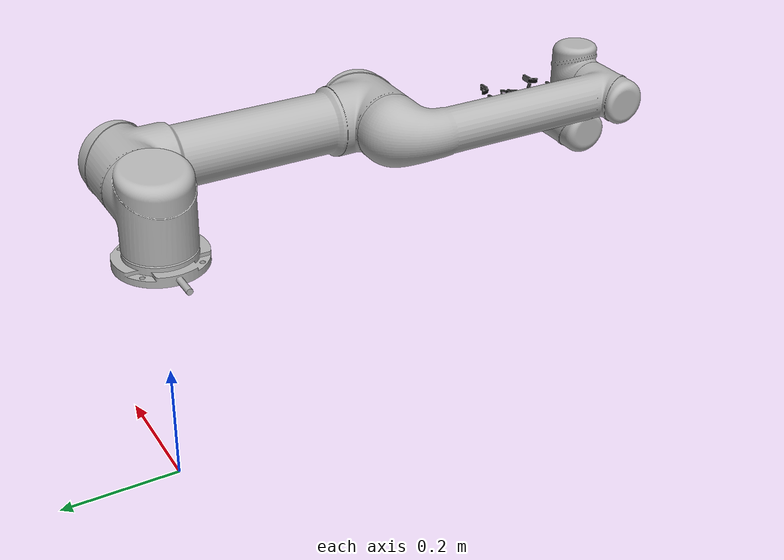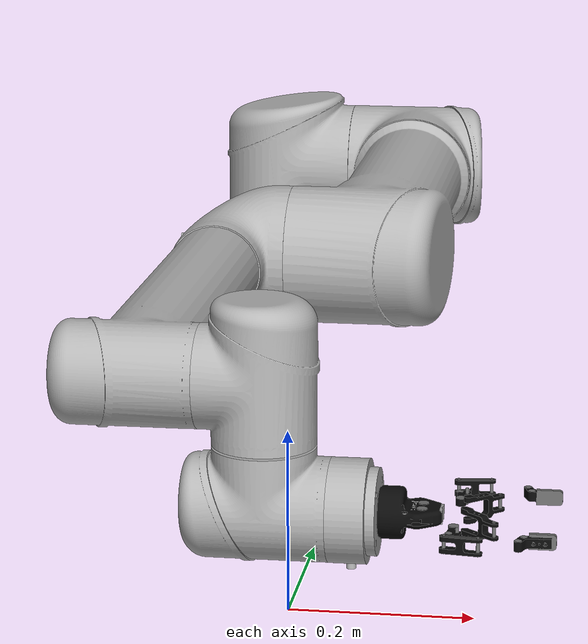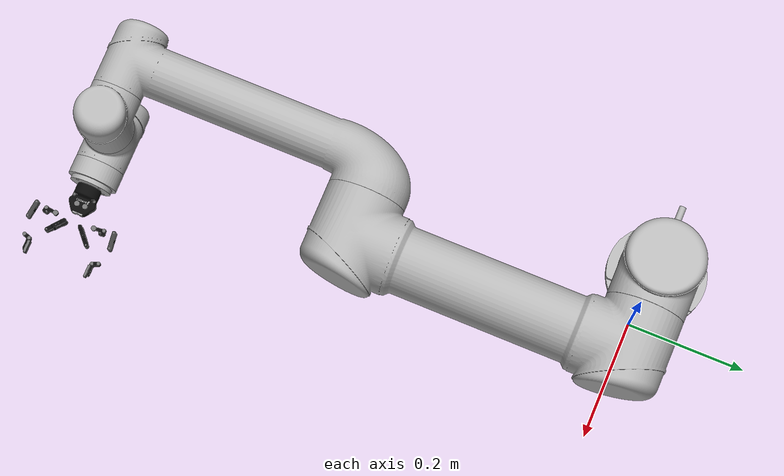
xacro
<?xml version="1.0"?>
<robot xmlns:xacro="http://www.ros.org/wiki/xacro" name="ur_robotiq">

  <xacro:include filename="$(find ur_description)/urdf/common.gazebo.xacro" />
  <xacro:include filename="$(find ur_robotiq_description)/urdf/ur5-vel.urdf.xacro" />
  <xacro:include filename="$(find robotiq_85_description)/urdf/robotiq_85_gripper.urdf.xacro" />

  <xacro:ur5_robot prefix="" joint_limited="false"/>

  <link name="world" />

  <joint name="world_joint" type="fixed">
    <parent link="world" />
    <child link = "base_link" />
    <origin xyz="0.0 0.0 0.4" rpy="0.0 0.0 ${-pi/2}" />
  </joint>

  <xacro:robotiq_85_gripper prefix="" parent="tool0" >
    <origin xyz="0 0 0" rpy="0 ${-pi/2} ${pi/2}"/>
  </xacro:robotiq_85_gripper>

</robot>

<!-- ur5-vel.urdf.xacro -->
<robot xmlns:xacro="http://wiki.ros.org/xacro">

  <xacro:include filename="$(find ur_description)/urdf/ur.transmission.xacro" />
  <xacro:include filename="$(find ur_description)/urdf/ur.gazebo.xacro" />

  <xacro:macro name="cylinder_inertial" params="radius length mass *origin">
    <inertial>
      <mass value="${mass}" />
      <xacro:insert_block name="origin" />
      <inertia ixx="${0.0833333 * mass * (3 * radius * radius + length * length)}" ixy="0.0" ixz="0.0"
        iyy="${0.0833333 * mass * (3 * radius * radius + length * length)}" iyz="0.0"
        izz="${0.5 * mass * radius * radius}" />
    </inertial>
  </xacro:macro>

  <xacro:macro name="ur5_robot" params="prefix joint_limited
    shoulder_pan_lower_limit:=${-pi}    shoulder_pan_upper_limit:=${pi}
    shoulder_lift_lower_limit:=${-pi}    shoulder_lift_upper_limit:=${pi}
    elbow_joint_lower_limit:=${-pi}    elbow_joint_upper_limit:=${pi}
    wrist_1_lower_limit:=${-pi}    wrist_1_upper_limit:=${pi}
    wrist_2_lower_limit:=${-pi}    wrist_2_upper_limit:=${pi}
    wrist_3_lower_limit:=${-pi}    wrist_3_upper_limit:=${pi}
    transmission_hw_interface:=hardware_interface/VelocityJointInterface
    safety_limits:=false safety_pos_margin:=0.15
    safety_k_position:=20">

    <!-- Inertia parameters -->
    <xacro:property name="base_mass" value="4.0" />  <!-- This mass might be incorrect -->
    <xacro:property name="shoulder_mass" value="3.7000" />
    <xacro:property name="upper_arm_mass" value="8.3930" />
    <xacro:property name="forearm_mass" value="2.2750" />
    <xacro:property name="wrist_1_mass" value="1.2190" />
    <xacro:property name="wrist_2_mass" value="1.2190" />
    <xacro:property name="wrist_3_mass" value="0.1879" />

    <xacro:property name="shoulder_cog" value="0.0 0.00193 -0.02561" />
    <xacro:property name="upper_arm_cog" value="0.0 -0.024201 0.2125" />
    <xacro:property name="forearm_cog" value="0.0 0.0265 0.11993" />
    <xacro:property name="wrist_1_cog" value="0.0 0.110949 0.01634" />
    <xacro:property name="wrist_2_cog" value="0.0 0.0018 0.11099" />
    <xacro:property name="wrist_3_cog" value="0.0 0.001159 0.0" />

    <!-- Kinematic model -->
    <!-- Properties from urcontrol.conf -->
    <xacro:property name="d1" value="0.089159" />
    <xacro:property name="a2" value="-0.42500" />
    <xacro:property name="a3" value="-0.39225" />
    <xacro:property name="d4" value="0.10915" />
    <xacro:property name="d5" value="0.09465" />
    <xacro:property name="d6" value="0.0823" />

    <!-- Arbitrary offsets for shoulder/elbow joints -->
    <xacro:property name="shoulder_offset" value="0.13585" />  <!-- measured from model -->
    <xacro:property name="elbow_offset" value="-0.1197" /> <!-- measured from model -->

    <!-- link lengths used in model -->
    <xacro:property name="shoulder_height" value="${d1}" />
    <xacro:property name="upper_arm_length" value="${-a2}" />
    <xacro:property name="forearm_length" value="${-a3}" />
    <xacro:property name="wrist_1_length" value="${d4 - elbow_offset - shoulder_offset}" />
    <xacro:property name="wrist_2_length" value="${d5}" />
    <xacro:property name="wrist_3_length" value="${d6}" />
    <!--property name="shoulder_height" value="0.089159" /-->
    <!--property name="shoulder_offset" value="0.13585" /-->  <!-- shoulder_offset - elbow_offset + wrist_1_length = 0.10915 -->
    <!--property name="upper_arm_length" value="0.42500" /-->
    <!--property name="elbow_offset" value="0.1197" /-->       <!-- CAD measured -->
    <!--property name="forearm_length" value="0.39225" /-->
    <!--property name="wrist_1_length" value="0.093" /-->     <!-- CAD measured -->
    <!--property name="wrist_2_length" value="0.09465" /-->   <!-- In CAD this distance is 0.930, but in the spec it is 0.09465 -->
    <!--property name="wrist_3_length" value="0.0823" /-->

    <xacro:property name="shoulder_radius" value="0.060" />   <!-- manually measured -->
    <xacro:property name="upper_arm_radius" value="0.054" />  <!-- manually measured -->
    <xacro:property name="elbow_radius" value="0.060" />      <!-- manually measured -->
    <xacro:property name="forearm_radius" value="0.040" />    <!-- manually measured -->
    <xacro:property name="wrist_radius" value="0.045" />      <!-- manually measured -->

    <link name="${prefix}base_link" >
      <visual>
        <geometry>
          <mesh filename="package://ur_description/meshes/ur5/visual/base.dae" />
        </geometry>
        <material name="LightGrey">
          <color rgba="0.7 0.7 0.7 1.0"/>
        </material>
      </visual>
      <collision>
        <geometry>
          <mesh filename="package://ur_description/meshes/ur5/collision/base.stl" />
        </geometry>
      </collision>
      <xacro:cylinder_inertial radius="0.06" length="0.05" mass="${base_mass}">
        <origin xyz="0.0 0.0 0.0" rpy="0 0 0" />
      </xacro:cylinder_inertial>
    </link>

    <joint name="${prefix}shoulder_pan_joint" type="revolute">
      <parent link="${prefix}base_link" />
      <child link = "${prefix}shoulder_link" />
      <origin xyz="0.0 0.0 ${shoulder_height}" rpy="0.0 0.0 0.0" />
      <axis xyz="0 0 1" />
      <xacro:unless value="${joint_limited}">
        <limit lower="${-2.0 * pi}" upper="${2.0 * pi}" effort="150.0" velocity="3.15"/>
        <xacro:if value="${safety_limits}">
          <safety_controller soft_lower_limit="${-2.0 * pi + safety_pos_margin}" soft_upper_limit="${2.0 * pi - safety_pos_margin}" k_position="${safety_k_position}" k_velocity="0.0"/>
        </xacro:if>
      </xacro:unless>
      <xacro:if value="${joint_limited}">
        <limit lower="${shoulder_pan_lower_limit}" upper="${shoulder_pan_upper_limit}" effort="150.0" velocity="3.15"/>
        <xacro:if value="${safety_limits}">
          <safety_controller soft_lower_limit="${shoulder_pan_lower_limit + safety_pos_margin}" soft_upper_limit="${shoulder_pan_upper_limit - safety_pos_margin}" k_position="${safety_k_position}" k_velocity="0.0"/>
        </xacro:if>
      </xacro:if>
      <dynamics damping="0.0" friction="0.0"/>
    </joint>

    <link name="${prefix}shoulder_link">
      <visual>
        <geometry>
          <mesh filename="package://ur_description/meshes/ur5/visual/shoulder.dae" />
        </geometry>
        <material name="LightGrey">
          <color rgba="0.7 0.7 0.7 1.0"/>
        </material>
      </visual>
      <collision>
        <geometry>
          <mesh filename="package://ur_description/meshes/ur5/collision/shoulder.stl" />
        </geometry>
      </collision>
      <xacro:cylinder_inertial radius="0.06" length="0.15" mass="${shoulder_mass}">
        <origin xyz="0.0 0.0 0.0" rpy="0 0 0" />
      </xacro:cylinder_inertial>
    </link>

    <joint name="${prefix}shoulder_lift_joint" type="revolute">
      <parent link="${prefix}shoulder_link" />
      <child link = "${prefix}upper_arm_link" />
      <origin xyz="0.0 ${shoulder_offset} 0.0" rpy="0.0 ${pi / 2.0} 0.0" />
      <axis xyz="0 1 0" />
      <xacro:unless value="${joint_limited}">
        <limit lower="${-2.0 * pi}" upper="${2.0 * pi}" effort="150.0" velocity="3.15"/>
        <xacro:if value="${safety_limits}">
          <safety_controller soft_lower_limit="${-2.0 * pi + safety_pos_margin}" soft_upper_limit="${2.0 * pi - safety_pos_margin}" k_position="${safety_k_position}" k_velocity="0.0"/>
        </xacro:if>
      </xacro:unless>
      <xacro:if value="${joint_limited}">
        <limit lower="${shoulder_lift_lower_limit}" upper="${shoulder_lift_upper_limit}" effort="150.0" velocity="3.15"/>
        <xacro:if value="${safety_limits}">
          <safety_controller soft_lower_limit="${shoulder_lift_lower_limit + safety_pos_margin}" soft_upper_limit="${shoulder_lift_upper_limit - safety_pos_margin}" k_position="${safety_k_position}" k_velocity="0.0"/>
        </xacro:if>
      </xacro:if>
      <dynamics damping="0.0" friction="0.0"/>
    </joint>

    <link name="${prefix}upper_arm_link">
      <visual>
        <geometry>
          <mesh filename="package://ur_description/meshes/ur5/visual/upperarm.dae" />
        </geometry>
        <material name="LightGrey">
          <color rgba="0.7 0.7 0.7 1.0"/>
        </material>
      </visual>
      <collision>
        <geometry>
          <mesh filename="package://ur_description/meshes/ur5/collision/upperarm.stl" />
        </geometry>
      </collision>
      <xacro:cylinder_inertial radius="0.06" length="0.56" mass="${upper_arm_mass}">
        <origin xyz="0.0 0.0 0.28" rpy="0 0 0" />
      </xacro:cylinder_inertial>
    </link>

    <joint name="${prefix}elbow_joint" type="revolute">
      <parent link="${prefix}upper_arm_link" />
      <child link = "${prefix}forearm_link" />
      <origin xyz="0.0 ${elbow_offset} ${upper_arm_length}" rpy="0.0 0.0 0.0" />
      <axis xyz="0 1 0" />
      <xacro:unless value="${joint_limited}">
        <limit lower="${-pi}" upper="${pi}" effort="150.0" velocity="3.15"/>
        <xacro:if value="${safety_limits}">
          <safety_controller soft_lower_limit="${-2.0 * pi + safety_pos_margin}" soft_upper_limit="${2.0 * pi - safety_pos_margin}" k_position="${safety_k_position}" k_velocity="0.0"/>
        </xacro:if>
      </xacro:unless>
      <xacro:if value="${joint_limited}">
        <limit lower="${elbow_joint_lower_limit}" upper="${elbow_joint_upper_limit}" effort="150.0" velocity="3.15"/>
        <xacro:if value="${safety_limits}">
          <safety_controller soft_lower_limit="${elbow_joint_lower_limit + safety_pos_margin}" soft_upper_limit="${elbow_joint_upper_limit - safety_pos_margin}" k_position="${safety_k_position}" k_velocity="0.0"/>
        </xacro:if>
      </xacro:if>
      <dynamics damping="0.0" friction="0.0"/>
    </joint>

    <link name="${prefix}forearm_link">
      <visual>
        <geometry>
          <mesh filename="package://ur_description/meshes/ur5/visual/forearm.dae" />
        </geometry>
        <material name="LightGrey">
          <color rgba="0.7 0.7 0.7 1.0"/>
        </material>
      </visual>
      <collision>
        <geometry>
          <mesh filename="package://ur_description/meshes/ur5/collision/forearm.stl" />
        </geometry>
      </collision>
      <xacro:cylinder_inertial radius="0.06" length="${-a3}" mass="${forearm_mass}">
        <origin xyz="0.0 0.0 ${-a3/2}" rpy="0 0 0" />
      </xacro:cylinder_inertial>
    </link>

    <joint name="${prefix}wrist_1_joint" type="revolute">
      <parent link="${prefix}forearm_link" />
      <child link = "${prefix}wrist_1_link" />
      <origin xyz="0.0 0.0 ${forearm_length}" rpy="0.0 ${pi / 2.0} 0.0" />
      <axis xyz="0 1 0" />
      <xacro:unless value="${joint_limited}">
        <limit lower="${-2.0 * pi}" upper="${2.0 * pi}" effort="28.0" velocity="3.2"/>
        <xacro:if value="${safety_limits}">
          <safety_controller soft_lower_limit="${-2.0 * pi + safety_pos_margin}" soft_upper_limit="${2.0 * pi - safety_pos_margin}" k_position="${safety_k_position}" k_velocity="0.0"/>
        </xacro:if>
      </xacro:unless>
      <xacro:if value="${joint_limited}">
        <limit lower="${wrist_1_lower_limit}" upper="${wrist_1_upper_limit}" effort="28.0" velocity="3.2"/>
        <xacro:if value="${safety_limits}">
          <safety_controller soft_lower_limit="${wrist_1_lower_limit + safety_pos_margin}" soft_upper_limit="${wrist_1_upper_limit - safety_pos_margin}" k_position="${safety_k_position}" k_velocity="0.0"/>
        </xacro:if>
      </xacro:if>
      <dynamics damping="0.0" friction="0.0"/>
    </joint>

    <link name="${prefix}wrist_1_link">
      <visual>
        <geometry>
          <mesh filename="package://ur_description/meshes/ur5/visual/wrist1.dae" />
        </geometry>
        <material name="LightGrey">
          <color rgba="0.7 0.7 0.7 1.0"/>
        </material>
      </visual>
      <collision>
        <geometry>
          <mesh filename="package://ur_description/meshes/ur5/collision/wrist1.stl" />
        </geometry>
      </collision>
      <xacro:cylinder_inertial radius="0.06" length="0.12" mass="${wrist_1_mass}">
        <origin xyz="0.0 ${wrist_1_length} 0.0" rpy="0 0 0" />
      </xacro:cylinder_inertial>
    </link>

    <joint name="${prefix}wrist_2_joint" type="revolute">
      <parent link="${prefix}wrist_1_link" />
      <child link = "${prefix}wrist_2_link" />
      <origin xyz="0.0 ${wrist_1_length} 0.0" rpy="0.0 0.0 0.0" />
      <axis xyz="0 0 1" />
      <xacro:unless value="${joint_limited}">
        <limit lower="${-2.0 * pi}" upper="${2.0 * pi}" effort="28.0" velocity="3.2"/>
        <xacro:if value="${safety_limits}">
          <safety_controller soft_lower_limit="${-2.0 * pi + safety_pos_margin}" soft_upper_limit="${2.0 * pi - safety_pos_margin}" k_position="${safety_k_position}" k_velocity="0.0"/>
        </xacro:if>
      </xacro:unless>
      <xacro:if value="${joint_limited}">
        <limit lower="${wrist_2_lower_limit}" upper="${wrist_2_upper_limit}" effort="28.0" velocity="3.2"/>
        <xacro:if value="${safety_limits}">
          <safety_controller soft_lower_limit="${wrist_2_lower_limit + safety_pos_margin}" soft_upper_limit="${wrist_2_upper_limit - safety_pos_margin}" k_position="${safety_k_position}" k_velocity="0.0"/>
        </xacro:if>
      </xacro:if>
      <dynamics damping="0.0" friction="0.0"/>
    </joint>

    <link name="${prefix}wrist_2_link">
      <visual>
        <geometry>
          <mesh filename="package://ur_description/meshes/ur5/visual/wrist2.dae" />
        </geometry>
        <material name="LightGrey">
          <color rgba="0.7 0.7 0.7 1.0"/>
        </material>
      </visual>
      <collision>
        <geometry>
          <mesh filename="package://ur_description/meshes/ur5/collision/wrist2.stl" />
        </geometry>
      </collision>
      <xacro:cylinder_inertial radius="0.06" length="0.12" mass="${wrist_2_mass}">
        <origin xyz="0.0 0.0 ${wrist_2_length}" rpy="0 0 0" />
      </xacro:cylinder_inertial>
    </link>

    <joint name="${prefix}wrist_3_joint" type="revolute">
      <parent link="${prefix}wrist_2_link" />
      <child link = "${prefix}wrist_3_link" />
      <origin xyz="0.0 0.0 ${wrist_2_length}" rpy="0.0 0.0 0.0" />
      <axis xyz="0 1 0" />
      <xacro:unless value="${joint_limited}">
        <limit lower="${-2.0 * pi}" upper="${2.0 * pi}" effort="28.0" velocity="3.2"/>
        <xacro:if value="${safety_limits}">
          <safety_controller soft_lower_limit="${-2.0 * pi + safety_pos_margin}" soft_upper_limit="${2.0 * pi - safety_pos_margin}" k_position="${safety_k_position}" k_velocity="0.0"/>
        </xacro:if>
      </xacro:unless>
      <xacro:if value="${joint_limited}">
        <limit lower="${wrist_3_lower_limit}" upper="${wrist_3_upper_limit}" effort="28.0" velocity="3.2"/>
        <xacro:if value="${safety_limits}">
          <safety_controller soft_lower_limit="${wrist_3_lower_limit + safety_pos_margin}" soft_upper_limit="${wrist_3_upper_limit - safety_pos_margin}" k_position="${safety_k_position}" k_velocity="0.0"/>
        </xacro:if>
      </xacro:if>
      <dynamics damping="0.0" friction="0.0"/>
    </joint>

    <link name="${prefix}wrist_3_link">
      <visual>
        <geometry>
          <mesh filename="package://ur_description/meshes/ur5/visual/wrist3.dae" />
        </geometry>
        <material name="LightGrey">
          <color rgba="0.7 0.7 0.7 1.0"/>
        </material>
      </visual>
      <collision>
        <geometry>
          <mesh filename="package://ur_description/meshes/ur5/collision/wrist3.stl" />
        </geometry>
      </collision>
      <xacro:cylinder_inertial radius="0.0375" length="0.0345" mass="${wrist_3_mass}">
        <origin xyz="0.0 ${wrist_3_length - 0.0345/2} 0.0" rpy="${pi/2} 0 0" />
      </xacro:cylinder_inertial>
    </link>

    <joint name="${prefix}ee_fixed_joint" type="fixed">
      <parent link="${prefix}wrist_3_link" />
      <child link = "${prefix}ee_link" />
      <origin xyz="0.0 ${wrist_3_length} 0.0" rpy="0.0 0.0 ${pi/2.0}" />
    </joint>

    <link name="${prefix}ee_link">
      <collision>
        <geometry>
          <box size="0.01 0.01 0.01"/>
        </geometry>
        <origin rpy="0 0 0" xyz="-0.01 0 0"/>
      </collision>
    </link>

    <xacro:ur_arm_transmission prefix="${prefix}" hw_interface="${transmission_hw_interface}" />
    <xacro:ur_arm_gazebo prefix="${prefix}" />

    <!-- ROS base_link to UR 'Base' Coordinates transform -->
    <link name="${prefix}base"/>
    <joint name="${prefix}base_link-base_fixed_joint" type="fixed">
      <!-- NOTE: this rotation is only needed as long as base_link itself is
                 not corrected wrt the real robot (ie: rotated over 180
                 degrees)
      -->
      <origin xyz="0 0 0" rpy="0 0 ${-pi}"/>
      <parent link="${prefix}base_link"/>
      <child link="${prefix}base"/>
    </joint>

    <!-- Frame coincident with all-zeros TCP on UR controller -->
    <link name="${prefix}tool0"/>
    <joint name="${prefix}wrist_3_link-tool0_fixed_joint" type="fixed">
      <origin xyz="0 ${wrist_3_length} 0" rpy="${pi/-2.0} 0 0"/>
      <parent link="${prefix}wrist_3_link"/>
      <child link="${prefix}tool0"/>
    </joint>

  </xacro:macro>
</robot>

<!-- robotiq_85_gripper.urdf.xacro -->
<robot name="robotiq_85_gripper" xmlns:xacro="http://www.ros.org/wiki/xacro">

  <xacro:include filename="$(find robotiq_85_description)/urdf/robotiq_85_gripper.transmission.xacro" />

  <xacro:macro name="robotiq_85_gripper" params="prefix parent *origin">

    <joint name="${prefix}robotiq_85_base_joint" type="fixed">
      <parent link="${parent}"/>
      <child link="${prefix}robotiq_85_base_link"/>
      <xacro:insert_block name="origin"/>
    </joint>

    <link name="${prefix}robotiq_85_base_link">
      <visual>
        <geometry>
          <mesh filename="package://robotiq_85_description/meshes/visual/robotiq_85_base_link.dae"/>
        </geometry>
      </visual>
      <collision>
        <geometry>
          <mesh filename="package://robotiq_85_description/meshes/collision/robotiq_85_base_link.stl"/>
        </geometry>
      </collision>
      <inertial>
        <mass value="0.636951" />
        <origin xyz="0.0 0.0 0.0" />
        <inertia ixx = "0.000380" ixy = "0.000000" ixz = "0.000000"
             iyx = "0.000000" iyy = "0.001110" iyz = "0.000000"
             izx = "0.000000" izy = "0.000000" izz = "0.001171" />
      </inertial>
    </link>

    <joint name="${prefix}robotiq_85_left_knuckle_joint" type="revolute">
      <parent link="${prefix}robotiq_85_base_link"/>
      <child link="${prefix}robotiq_85_left_knuckle_link"/>
      <axis xyz="0 0 1"/>
      <origin rpy="${pi} 0.0 0.0" xyz="0.05490451627 0.03060114443 0.0"/>
      <limit lower="0.0" upper="0.80285" velocity="0.5" effort="1000"/>
    </joint>

    <joint name="${prefix}robotiq_85_right_knuckle_joint" type="continuous">
      <parent link="${prefix}robotiq_85_base_link"/>
      <child link="${prefix}robotiq_85_right_knuckle_link"/>
      <axis xyz="0 0 1"/>
      <origin rpy="0.0 0.0 0.0" xyz="0.05490451627 -0.03060114443 0.0"/>
      <limit lower="-3.14" upper="3.14" velocity="100.0" effort="1000"/>
      <mimic joint="${prefix}robotiq_85_left_knuckle_joint"/>
    </joint>

    <link name="${prefix}robotiq_85_left_knuckle_link">
      <visual>
        <geometry>
          <mesh filename="package://robotiq_85_description/meshes/visual/robotiq_85_knuckle_link.dae"/>
        </geometry>
      </visual>
      <collision>
        <geometry>
          <mesh filename="package://robotiq_85_description/meshes/collision/robotiq_85_knuckle_link.stl"/>
        </geometry>
      </collision>
      <inertial>
        <mass value="0.018491" />
        <origin xyz="0.0 0.0 0.0" />
        <inertia ixx = "0.000009" ixy = "-0.000001" ixz = "0.000000"
             iyx = "-0.000001" iyy = "0.000001" iyz = "0.000000"
             izx = "0.000000" izy = "0.000000" izz = "0.000010" />
      </inertial>
    </link>

    <link name="${prefix}robotiq_85_right_knuckle_link">
      <visual>
        <geometry>
          <mesh filename="package://robotiq_85_description/meshes/visual/robotiq_85_knuckle_link.dae"/>
        </geometry>
      </visual>
      <collision>
        <geometry>
          <mesh filename="package://robotiq_85_description/meshes/collision/robotiq_85_knuckle_link.stl"/>
        </geometry>
      </collision>
      <inertial>
        <mass value="0.018491" />
        <origin xyz="0.0 0.0 0.0" />
        <inertia ixx = "0.000009" ixy = "-0.000001" ixz = "0.000000"
             iyx = "-0.000001" iyy = "0.000001" iyz = "0.000000"
             izx = "0.000000" izy = "0.000000" izz = "0.000010" />
      </inertial>
    </link>

    <joint name="${prefix}robotiq_85_left_finger_joint" type="fixed">
      <parent link="${prefix}robotiq_85_left_knuckle_link"/>
      <child link="${prefix}robotiq_85_left_finger_link"/>
      <origin xyz="-0.00408552455 -0.03148604435 0.0" rpy="0 0 0" />
    </joint>

    <joint name="${prefix}robotiq_85_right_finger_joint" type="fixed">
      <parent link="${prefix}robotiq_85_right_knuckle_link"/>
      <child link="${prefix}robotiq_85_right_finger_link"/>
      <origin xyz="-0.00408552455 -0.03148604435 0.0" rpy="0 0 0" />
    </joint>

    <link name="${prefix}robotiq_85_left_finger_link">
      <visual>
        <geometry>
          <mesh filename="package://robotiq_85_description/meshes/visual/robotiq_85_finger_link.dae"/>
        </geometry>
      </visual>
      <collision>
        <geometry>
          <mesh filename="package://robotiq_85_description/meshes/collision/robotiq_85_finger_link.stl"/>
        </geometry>
      </collision>
      <inertial>
        <mass value="0.027309" />
        <origin xyz="0.0 0.0 0.0" />
        <inertia ixx = "0.000003" ixy = "-0.000002" ixz = "0.000000"
             iyx = "-0.000002" iyy = "0.000021" iyz = "0.000000"
             izx = "0.000000" izy = "0.000000" izz = "0.000020" />
      </inertial>
    </link>

    <link name="${prefix}robotiq_85_right_finger_link">
      <visual>
        <geometry>
          <mesh filename="package://robotiq_85_description/meshes/visual/robotiq_85_finger_link.dae"/>
        </geometry>
      </visual>
      <collision>
        <geometry>
          <mesh filename="package://robotiq_85_description/meshes/collision/robotiq_85_finger_link.stl"/>
        </geometry>
      </collision>
      <inertial>
        <mass value="0.027309" />
        <origin xyz="0.0 0.0 0.0" />
        <inertia ixx = "0.000003" ixy = "-0.000002" ixz = "0.000000"
             iyx = "-0.000002" iyy = "0.000021" iyz = "0.000000"
             izx = "0.000000" izy = "0.000000" izz = "0.000020" />
      </inertial>
    </link>

    <joint name="${prefix}robotiq_85_left_inner_knuckle_joint" type="continuous">
      <parent link="${prefix}robotiq_85_base_link"/>
      <child link="${prefix}robotiq_85_left_inner_knuckle_link"/>
      <axis xyz="0 0 1"/>
      <origin xyz="0.06142 0.0127 0" rpy="${pi} 0.0 0.0" />
      <limit lower="-3.14" upper="3.14" velocity="100.0" effort="0.1"/>
      <mimic joint="${prefix}robotiq_85_left_knuckle_joint" offset="0"/>
    </joint>

    <joint name="${prefix}robotiq_85_right_inner_knuckle_joint" type="continuous">
      <parent link="${prefix}robotiq_85_base_link"/>
      <child link="${prefix}robotiq_85_right_inner_knuckle_link"/>
      <axis xyz="0 0 1"/>
      <origin xyz="0.06142 -0.0127 0" rpy="0 0 0"/>
      <limit lower="-3.14" upper="3.14" velocity="100.0" effort="0.1"/>
      <mimic joint="${prefix}robotiq_85_left_knuckle_joint" offset="0"/>
    </joint>

    <link name="${prefix}robotiq_85_left_inner_knuckle_link">
      <visual>
        <geometry>
          <mesh filename="package://robotiq_85_description/meshes/visual/robotiq_85_inner_knuckle_link.dae"/>
        </geometry>
      </visual>
      <collision>
        <geometry>
          <mesh filename="package://robotiq_85_description/meshes/collision/robotiq_85_inner_knuckle_link.stl"/>
        </geometry>
      </collision>
      <inertial>
        <mass value="0.029951" />
        <origin xyz="0.0 0.0 0.0" />
        <inertia ixx = "0.000039" ixy = "0.000000" ixz = "0.000000"
             iyx = "0.000000" iyy = "0.000005" iyz = "0.000000"
             izx = "0.000000" izy = "0.000000" izz = "0.000035" />
      </inertial>
    </link>
    <link name="${prefix}robotiq_85_right_inner_knuckle_link">
      <visual>
        <geometry>
          <mesh filename="package://robotiq_85_description/meshes/visual/robotiq_85_inner_knuckle_link.dae"/>
        </geometry>
      </visual>
      <collision>
        <geometry>
          <mesh filename="package://robotiq_85_description/meshes/collision/robotiq_85_inner_knuckle_link.stl"/>
        </geometry>
      </collision>
      <inertial>
        <mass value="0.029951" />
        <origin xyz="0.0 0.0 0.0" />
        <inertia ixx = "0.000039" ixy = "0.000000" ixz = "0.000000"
             iyx = "0.000000" iyy = "0.000005" iyz = "0.000000"
             izx = "0.000000" izy = "0.000000" izz = "0.000035" />
      </inertial>
    </link>

    <joint name="${prefix}robotiq_85_left_finger_tip_joint" type="continuous">
      <parent link="${prefix}robotiq_85_left_inner_knuckle_link"/>
      <child link="${prefix}robotiq_85_left_finger_tip_link"/>
      <axis xyz="0 0 1"/>
      <origin xyz="0.04303959807 -0.03759940821 0.0" rpy="0.0 0.0 0.0"/>
      <limit lower="-3.14" upper="3.14" velocity="100.0" effort="0.1"/>
      <mimic joint="${prefix}robotiq_85_left_knuckle_joint" multiplier="-1"/>
    </joint>

    <joint name="${prefix}robotiq_85_right_finger_tip_joint" type="continuous">
      <parent link="${prefix}robotiq_85_right_inner_knuckle_link"/>
      <child link="${prefix}robotiq_85_right_finger_tip_link"/>
      <axis xyz="0 0 1"/>
      <origin rpy="0.0 0.0 0.0" xyz="0.04303959807 -0.03759940821  0.0"/>
      <limit lower="-3.14" upper="3.14" velocity="100.0" effort="0.1"/>
      <mimic joint="${prefix}robotiq_85_left_knuckle_joint" multiplier="-1"/>
    </joint>

    <link name="${prefix}robotiq_85_left_finger_tip_link">
      <visual>
        <geometry>
          <mesh filename="package://robotiq_85_description/meshes/visual/robotiq_85_finger_tip_link.dae"/>
        </geometry>
      </visual>
      <collision>
        <geometry>
          <mesh filename="package://robotiq_85_description/meshes/collision/robotiq_85_finger_tip_link.stl"/>
        </geometry>
      </collision>
      <inertial>
        <mass value="0.019555" />
        <origin xyz="0.0 0.0 0.0" />
        <inertia ixx = "0.000002" ixy = "0.000000" ixz = "0.000000"
             iyx = "0.000000" iyy = "0.000005" iyz = "0.000000"
             izx = "0.000000" izy = "0.000000" izz = "0.000006" />
      </inertial>
    </link>

    <link name="${prefix}robotiq_85_right_finger_tip_link">
      <visual>
        <geometry>
          <mesh filename="package://robotiq_85_description/meshes/visual/robotiq_85_finger_tip_link.dae"/>
        </geometry>
      </visual>
      <collision>
        <geometry>
          <mesh filename="package://robotiq_85_description/meshes/collision/robotiq_85_finger_tip_link.stl"/>
        </geometry>
      </collision>
      <inertial>
        <mass value="0.019555" />
        <origin xyz="0.0 0.0 0.0" />
        <inertia ixx = "0.000002" ixy = "0.000000" ixz = "0.000000"
             iyx = "0.000000" iyy = "0.000005" iyz = "0.000000"
             izx = "0.000000" izy = "0.000000" izz = "0.000006" />
      </inertial>
    </link>

    <!-- Improve grasping physics -->
    <gazebo reference="${prefix}robotiq_85_left_finger_tip_link">
      <kp>1000000.0</kp>
      <kd>1.0</kd>
      <mu1>1.0</mu1>
      <mu2>1.0</mu2>
      <minDepth>0.001</minDepth>
    </gazebo>
    <gazebo reference="${prefix}robotiq_85_right_finger_tip_link">
      <kp>1000000.0</kp>
      <kd>1.0</kd>
      <mu1>1.0</mu1>
      <mu2>1.0</mu2>
      <minDepth>0.001</minDepth>
    </gazebo>

    <xacro:robotiq_85_gripper_transmission prefix="${prefix}" />

  </xacro:macro>
</robot>
